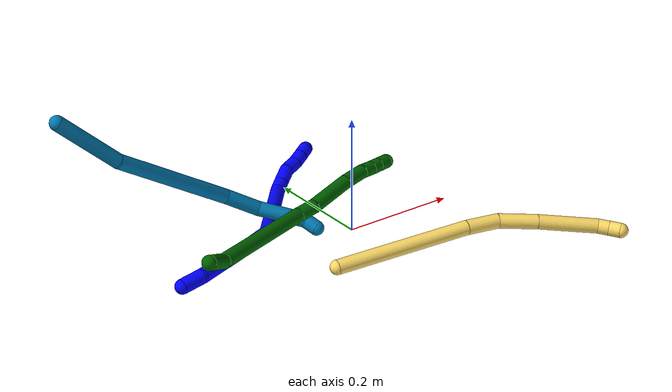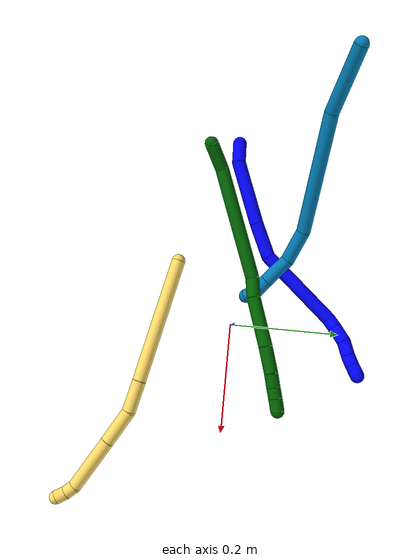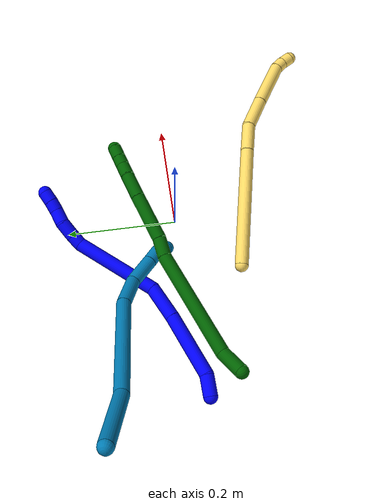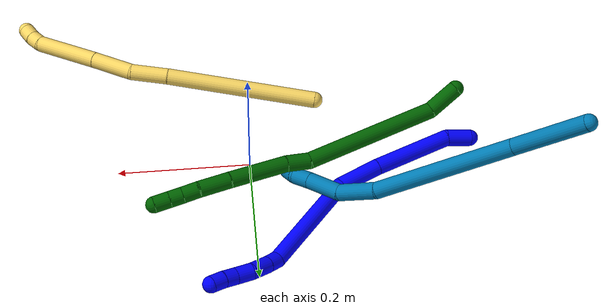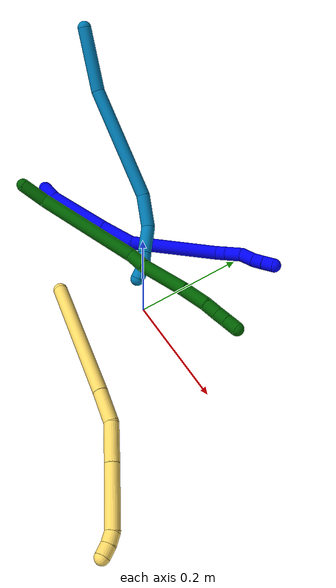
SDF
<sdf version="1.7">
 <world name="default">
  <model name="1">
   <static>0</static>
   <link name="1">
    <collision name="collision-cylinder-e_1_1_4">
     <pose>0.008396 -0.002607 -0.016357 2.98357 0.469124 2.50169</pose>
     <geometry><cylinder><radius>0.0125</radius><length>0.03714</length></cylinder></geometry>
     <surface>
      <friction><ode><mu>1.16</mu><mu2>1.16</mu2><slip1>0</slip1><slip2>0</slip2></ode></friction>
      <contact><ode><kp>1e+06</kp><kd>1</kd><max_vel>0</max_vel><min_depth>0.001</min_depth></ode></contact>
     </surface>
    </collision>
    <visual name="visual-cylinder-e_1_1_4">
     <pose>0.008396 -0.002607 -0.016357 2.98357 0.469124 2.50169</pose>
     <geometry><cylinder><radius>0.0125</radius><length>0.03714</length></cylinder></geometry>
     <material><ambient>0 0 1 1</ambient></material>
    </visual>
    <collision name="collision-cylinder-e_2_4_5">
     <pose>0.051893 0.00668 -0.079528 -2.89281 0.628444 -2.40702</pose>
     <geometry><cylinder><radius>0.0125</radius><length>0.119416</length></cylinder></geometry>
     <surface>
      <friction><ode><mu>1.16</mu><mu2>1.16</mu2><slip1>0</slip1><slip2>0</slip2></ode></friction>
      <contact><ode><kp>1e+06</kp><kd>1</kd><max_vel>0</max_vel><min_depth>0.001</min_depth></ode></contact>
     </surface>
    </collision>
    <visual name="visual-cylinder-e_2_4_5">
     <pose>0.051893 0.00668 -0.079528 -2.89281 0.628444 -2.40702</pose>
     <geometry><cylinder><radius>0.0125</radius><length>0.119416</length></cylinder></geometry>
     <material><ambient>0 0 1 1</ambient></material>
    </visual>
    <collision name="collision-cylinder-e_3_5_6">
     <pose>0.106765 0.026785 -0.150716 -2.8166 0.655348 -2.24285</pose>
     <geometry><cylinder><radius>0.0125</radius><length>0.064882</length></cylinder></geometry>
     <surface>
      <friction><ode><mu>1.16</mu><mu2>1.16</mu2><slip1>0</slip1><slip2>0</slip2></ode></friction>
      <contact><ode><kp>1e+06</kp><kd>1</kd><max_vel>0</max_vel><min_depth>0.001</min_depth></ode></contact>
     </surface>
    </collision>
    <visual name="visual-cylinder-e_3_5_6">
     <pose>0.106765 0.026785 -0.150716 -2.8166 0.655348 -2.24285</pose>
     <geometry><cylinder><radius>0.0125</radius><length>0.064882</length></cylinder></geometry>
     <material><ambient>0 0 1 1</ambient></material>
    </visual>
    <collision name="collision-cylinder-e_4_6_7">
     <pose>0.190973 0.069179 -0.208637 -2.34682 0.931625 -1.75026</pose>
     <geometry><cylinder><radius>0.0125</radius><length>0.160573</length></cylinder></geometry>
     <surface>
      <friction><ode><mu>1.16</mu><mu2>1.16</mu2><slip1>0</slip1><slip2>0</slip2></ode></friction>
      <contact><ode><kp>1e+06</kp><kd>1</kd><max_vel>0</max_vel><min_depth>0.001</min_depth></ode></contact>
     </surface>
    </collision>
    <visual name="visual-cylinder-e_4_6_7">
     <pose>0.190973 0.069179 -0.208637 -2.34682 0.931625 -1.75026</pose>
     <geometry><cylinder><radius>0.0125</radius><length>0.160573</length></cylinder></geometry>
     <material><ambient>0 0 1 1</ambient></material>
    </visual>
    <collision name="collision-cylinder-e_5_7_8">
     <pose>0.264336 0.103965 -0.24705 -3.01818 1.06835 -2.93346</pose>
     <geometry><cylinder><radius>0.0125</radius><length>0.020368</length></cylinder></geometry>
     <surface>
      <friction><ode><mu>1.16</mu><mu2>1.16</mu2><slip1>0</slip1><slip2>0</slip2></ode></friction>
      <contact><ode><kp>1e+06</kp><kd>1</kd><max_vel>0</max_vel><min_depth>0.001</min_depth></ode></contact>
     </surface>
    </collision>
    <visual name="visual-cylinder-e_5_7_8">
     <pose>0.264336 0.103965 -0.24705 -3.01818 1.06835 -2.93346</pose>
     <geometry><cylinder><radius>0.0125</radius><length>0.020368</length></cylinder></geometry>
     <material><ambient>0 0 1 1</ambient></material>
    </visual>
    <collision name="collision-cylinder-e_6_8_9">
     <pose>0.286703 0.104455 -0.259505 3.12671 1.05687 3.1161</pose>
     <geometry><cylinder><radius>0.0125</radius><length>0.030873</length></cylinder></geometry>
     <surface>
      <friction><ode><mu>1.16</mu><mu2>1.16</mu2><slip1>0</slip1><slip2>0</slip2></ode></friction>
      <contact><ode><kp>1e+06</kp><kd>1</kd><max_vel>0</max_vel><min_depth>0.001</min_depth></ode></contact>
     </surface>
    </collision>
    <visual name="visual-cylinder-e_6_8_9">
     <pose>0.286703 0.104455 -0.259505 3.12671 1.05687 3.1161</pose>
     <geometry><cylinder><radius>0.0125</radius><length>0.030873</length></cylinder></geometry>
     <material><ambient>0 0 1 1</ambient></material>
    </visual>
    <collision name="collision-cylinder-e_7_9_10">
     <pose>0.308739 0.104745 -0.276718 -3.09976 0.728366 -3.03195</pose>
     <geometry><cylinder><radius>0.0125</radius><length>0.025819</length></cylinder></geometry>
     <surface>
      <friction><ode><mu>1.16</mu><mu2>1.16</mu2><slip1>0</slip1><slip2>0</slip2></ode></friction>
      <contact><ode><kp>1e+06</kp><kd>1</kd><max_vel>0</max_vel><min_depth>0.001</min_depth></ode></contact>
     </surface>
    </collision>
    <visual name="visual-cylinder-e_7_9_10">
     <pose>0.308739 0.104745 -0.276718 -3.09976 0.728366 -3.03195</pose>
     <geometry><cylinder><radius>0.0125</radius><length>0.025819</length></cylinder></geometry>
     <material><ambient>0 0 1 1</ambient></material>
    </visual>
    <collision name="collision-cylinder-e_8_10_11">
     <pose>0.325206 0.104665 -0.292791 3.06672 0.883306 2.9835</pose>
     <geometry><cylinder><radius>0.0125</radius><length>0.020376</length></cylinder></geometry>
     <surface>
      <friction><ode><mu>1.16</mu><mu2>1.16</mu2><slip1>0</slip1><slip2>0</slip2></ode></friction>
      <contact><ode><kp>1e+06</kp><kd>1</kd><max_vel>0</max_vel><min_depth>0.001</min_depth></ode></contact>
     </surface>
    </collision>
    <visual name="visual-cylinder-e_8_10_11">
     <pose>0.325206 0.104665 -0.292791 3.06672 0.883306 2.9835</pose>
     <geometry><cylinder><radius>0.0125</radius><length>0.020376</length></cylinder></geometry>
     <material><ambient>0 0 1 1</ambient></material>
    </visual>
    <collision name="collision-cylinder-e_9_11_2">
     <pose>0.341149 0.104598 -0.305588 -3.07596 0.903042 -3.0064</pose>
     <geometry><cylinder><radius>0.0125</radius><length>0.020552</length></cylinder></geometry>
     <surface>
      <friction><ode><mu>1.16</mu><mu2>1.16</mu2><slip1>0</slip1><slip2>0</slip2></ode></friction>
      <contact><ode><kp>1e+06</kp><kd>1</kd><max_vel>0</max_vel><min_depth>0.001</min_depth></ode></contact>
     </surface>
    </collision>
    <visual name="visual-cylinder-e_9_11_2">
     <pose>0.341149 0.104598 -0.305588 -3.07596 0.903042 -3.0064</pose>
     <geometry><cylinder><radius>0.0125</radius><length>0.020552</length></cylinder></geometry>
     <material><ambient>0 0 1 1</ambient></material>
    </visual>
    <collision name="collision-sphere-2">
     <pose>0.349218 0.105016 -0.311937 0 -0 0</pose>
     <geometry><sphere><radius>0.0125</radius></sphere></geometry>
     <surface>
      <friction><ode><mu>1.16</mu><mu2>1.16</mu2><slip1>0</slip1><slip2>0</slip2></ode></friction>
      <contact><ode><kp>1e+06</kp><kd>1</kd><max_vel>0</max_vel><min_depth>0.001</min_depth></ode></contact>
     </surface>
    </collision>
    <visual name="visual-sphere-2">
     <pose>0.349218 0.105016 -0.311937 0 -0 0</pose>
     <geometry><sphere><radius>0.0125</radius></sphere></geometry>
     <material><ambient>0 0 1 1</ambient></material>
    </visual>
    <collision name="collision-sphere-11">
     <pose>0.33308 0.104181 -0.299238 0 -0 0</pose>
     <geometry><sphere><radius>0.0125</radius></sphere></geometry>
     <surface>
      <friction><ode><mu>1.16</mu><mu2>1.16</mu2><slip1>0</slip1><slip2>0</slip2></ode></friction>
      <contact><ode><kp>1e+06</kp><kd>1</kd><max_vel>0</max_vel><min_depth>0.001</min_depth></ode></contact>
     </surface>
    </collision>
    <visual name="visual-sphere-11">
     <pose>0.33308 0.104181 -0.299238 0 -0 0</pose>
     <geometry><sphere><radius>0.0125</radius></sphere></geometry>
     <material><ambient>0 0 1 1</ambient></material>
    </visual>
    <collision name="collision-sphere-10">
     <pose>0.317333 0.105148 -0.286344 0 -0 0</pose>
     <geometry><sphere><radius>0.0125</radius></sphere></geometry>
     <surface>
      <friction><ode><mu>1.16</mu><mu2>1.16</mu2><slip1>0</slip1><slip2>0</slip2></ode></friction>
      <contact><ode><kp>1e+06</kp><kd>1</kd><max_vel>0</max_vel><min_depth>0.001</min_depth></ode></contact>
     </surface>
    </collision>
    <visual name="visual-sphere-10">
     <pose>0.317333 0.105148 -0.286344 0 -0 0</pose>
     <geometry><sphere><radius>0.0125</radius></sphere></geometry>
     <material><ambient>0 0 1 1</ambient></material>
    </visual>
    <collision name="collision-sphere-9">
     <pose>0.300146 0.104342 -0.267093 0 -0 0</pose>
     <geometry><sphere><radius>0.0125</radius></sphere></geometry>
     <surface>
      <friction><ode><mu>1.16</mu><mu2>1.16</mu2><slip1>0</slip1><slip2>0</slip2></ode></friction>
      <contact><ode><kp>1e+06</kp><kd>1</kd><max_vel>0</max_vel><min_depth>0.001</min_depth></ode></contact>
     </surface>
    </collision>
    <visual name="visual-sphere-9">
     <pose>0.300146 0.104342 -0.267093 0 -0 0</pose>
     <geometry><sphere><radius>0.0125</radius></sphere></geometry>
     <material><ambient>0 0 1 1</ambient></material>
    </visual>
    <collision name="collision-sphere-4">
     <pose>0.016791 -0.005213 -0.032715 0 -0 0</pose>
     <geometry><sphere><radius>0.0125</radius></sphere></geometry>
     <surface>
      <friction><ode><mu>1.16</mu><mu2>1.16</mu2><slip1>0</slip1><slip2>0</slip2></ode></friction>
      <contact><ode><kp>1e+06</kp><kd>1</kd><max_vel>0</max_vel><min_depth>0.001</min_depth></ode></contact>
     </surface>
    </collision>
    <visual name="visual-sphere-4">
     <pose>0.016791 -0.005213 -0.032715 0 -0 0</pose>
     <geometry><sphere><radius>0.0125</radius></sphere></geometry>
     <material><ambient>0 0 1 1</ambient></material>
    </visual>
    <collision name="collision-sphere-1">
     <geometry><sphere><radius>0.0125</radius></sphere></geometry>
     <surface>
      <friction><ode><mu>1.16</mu><mu2>1.16</mu2><slip1>0</slip1><slip2>0</slip2></ode></friction>
      <contact><ode><kp>1e+06</kp><kd>1</kd><max_vel>0</max_vel><min_depth>0.001</min_depth></ode></contact>
     </surface>
    </collision>
    <visual name="visual-sphere-1">
     <geometry><sphere><radius>0.0125</radius></sphere></geometry>
     <material><ambient>0 0 1 1</ambient></material>
    </visual>
    <collision name="collision-sphere-8">
     <pose>0.273261 0.104568 -0.251917 0 -0 0</pose>
     <geometry><sphere><radius>0.0125</radius></sphere></geometry>
     <surface>
      <friction><ode><mu>1.16</mu><mu2>1.16</mu2><slip1>0</slip1><slip2>0</slip2></ode></friction>
      <contact><ode><kp>1e+06</kp><kd>1</kd><max_vel>0</max_vel><min_depth>0.001</min_depth></ode></contact>
     </surface>
    </collision>
    <visual name="visual-sphere-8">
     <pose>0.273261 0.104568 -0.251917 0 -0 0</pose>
     <geometry><sphere><radius>0.0125</radius></sphere></geometry>
     <material><ambient>0 0 1 1</ambient></material>
    </visual>
    <collision name="collision-sphere-5">
     <pose>0.086995 0.018572 -0.126342 0 -0 0</pose>
     <geometry><sphere><radius>0.0125</radius></sphere></geometry>
     <surface>
      <friction><ode><mu>1.16</mu><mu2>1.16</mu2><slip1>0</slip1><slip2>0</slip2></ode></friction>
      <contact><ode><kp>1e+06</kp><kd>1</kd><max_vel>0</max_vel><min_depth>0.001</min_depth></ode></contact>
     </surface>
    </collision>
    <visual name="visual-sphere-5">
     <pose>0.086995 0.018572 -0.126342 0 -0 0</pose>
     <geometry><sphere><radius>0.0125</radius></sphere></geometry>
     <material><ambient>0 0 1 1</ambient></material>
    </visual>
    <collision name="collision-sphere-6">
     <pose>0.126536 0.034998 -0.17509 0 -0 0</pose>
     <geometry><sphere><radius>0.0125</radius></sphere></geometry>
     <surface>
      <friction><ode><mu>1.16</mu><mu2>1.16</mu2><slip1>0</slip1><slip2>0</slip2></ode></friction>
      <contact><ode><kp>1e+06</kp><kd>1</kd><max_vel>0</max_vel><min_depth>0.001</min_depth></ode></contact>
     </surface>
    </collision>
    <visual name="visual-sphere-6">
     <pose>0.126536 0.034998 -0.17509 0 -0 0</pose>
     <geometry><sphere><radius>0.0125</radius></sphere></geometry>
     <material><ambient>0 0 1 1</ambient></material>
    </visual>
    <collision name="collision-sphere-7">
     <pose>0.25541 0.103361 -0.242183 0 -0 0</pose>
     <geometry><sphere><radius>0.0125</radius></sphere></geometry>
     <surface>
      <friction><ode><mu>1.16</mu><mu2>1.16</mu2><slip1>0</slip1><slip2>0</slip2></ode></friction>
      <contact><ode><kp>1e+06</kp><kd>1</kd><max_vel>0</max_vel><min_depth>0.001</min_depth></ode></contact>
     </surface>
    </collision>
    <visual name="visual-sphere-7">
     <pose>0.25541 0.103361 -0.242183 0 -0 0</pose>
     <geometry><sphere><radius>0.0125</radius></sphere></geometry>
     <material><ambient>0 0 1 1</ambient></material>
    </visual>
    <inertial>
     <pose>0.159891 0.051753 -0.171639 0 -0 0</pose>
     <mass>0.5</mass>
     <inertia>
      <ixx>-0.000419</ixx>
      <ixy>0</ixy>
      <ixz>0</ixz>
      <iyy>0.000105</iyy>
      <iyz>0</iyz>
      <izz>-0.000603</izz>
     </inertia>
    </inertial>
   </link>
   <pose>-0.339502 -0.014087 0.012146 -1.2779 -0.582114 1.13801</pose>
  </model>
  <model name="5">
   <static>0</static>
   <link name="5">
    <collision name="collision-cylinder-e_1_1_4">
     <pose>0.112079 0.000285 -0.030842 -3.13237 1.30225 -3.12949</pose>
     <geometry><cylinder><radius>0.0125</radius><length>0.23249</length></cylinder></geometry>
     <surface>
      <friction><ode><mu>1.16</mu><mu2>1.16</mu2><slip1>0</slip1><slip2>0</slip2></ode></friction>
      <contact><ode><kp>1e+06</kp><kd>1</kd><max_vel>0</max_vel><min_depth>0.001</min_depth></ode></contact>
     </surface>
    </collision>
    <visual name="visual-cylinder-e_1_1_4">
     <pose>0.112079 0.000285 -0.030842 -3.13237 1.30225 -3.12949</pose>
     <geometry><cylinder><radius>0.0125</radius><length>0.23249</length></cylinder></geometry>
     <material><ambient>1 0.858824 0.4 1</ambient></material>
    </visual>
    <collision name="collision-cylinder-e_2_4_5">
     <pose>0.251601 0.002656 -0.070521 -2.90963 1.25132 -2.82184</pose>
     <geometry><cylinder><radius>0.0125</radius><length>0.057814</length></cylinder></geometry>
     <surface>
      <friction><ode><mu>1.16</mu><mu2>1.16</mu2><slip1>0</slip1><slip2>0</slip2></ode></friction>
      <contact><ode><kp>1e+06</kp><kd>1</kd><max_vel>0</max_vel><min_depth>0.001</min_depth></ode></contact>
     </surface>
    </collision>
    <visual name="visual-cylinder-e_2_4_5">
     <pose>0.251601 0.002656 -0.070521 -2.90963 1.25132 -2.82184</pose>
     <geometry><cylinder><radius>0.0125</radius><length>0.057814</length></cylinder></geometry>
     <material><ambient>1 0.858824 0.4 1</ambient></material>
    </visual>
    <collision name="collision-cylinder-e_3_5_6">
     <pose>0.306134 0.006552 -0.098821 -3.04893 0.945692 -2.96082</pose>
     <geometry><cylinder><radius>0.0125</radius><length>0.066812</length></cylinder></geometry>
     <surface>
      <friction><ode><mu>1.16</mu><mu2>1.16</mu2><slip1>0</slip1><slip2>0</slip2></ode></friction>
      <contact><ode><kp>1e+06</kp><kd>1</kd><max_vel>0</max_vel><min_depth>0.001</min_depth></ode></contact>
     </surface>
    </collision>
    <visual name="visual-cylinder-e_3_5_6">
     <pose>0.306134 0.006552 -0.098821 -3.04893 0.945692 -2.96082</pose>
     <geometry><cylinder><radius>0.0125</radius><length>0.066812</length></cylinder></geometry>
     <material><ambient>1 0.858824 0.4 1</ambient></material>
    </visual>
    <collision name="collision-cylinder-e_4_6_7">
     <pose>0.373947 0.013274 -0.149294 -2.98447 0.914033 -2.8241</pose>
     <geometry><cylinder><radius>0.0125</radius><length>0.102842</length></cylinder></geometry>
     <surface>
      <friction><ode><mu>1.16</mu><mu2>1.16</mu2><slip1>0</slip1><slip2>0</slip2></ode></friction>
      <contact><ode><kp>1e+06</kp><kd>1</kd><max_vel>0</max_vel><min_depth>0.001</min_depth></ode></contact>
     </surface>
    </collision>
    <visual name="visual-cylinder-e_4_6_7">
     <pose>0.373947 0.013274 -0.149294 -2.98447 0.914033 -2.8241</pose>
     <geometry><cylinder><radius>0.0125</radius><length>0.102842</length></cylinder></geometry>
     <material><ambient>1 0.858824 0.4 1</ambient></material>
    </visual>
    <collision name="collision-cylinder-e_5_7_8">
     <pose>0.420632 0.017815 -0.18835 3.09553 0.637075 3.00212</pose>
     <geometry><cylinder><radius>0.0125</radius><length>0.020042</length></cylinder></geometry>
     <surface>
      <friction><ode><mu>1.16</mu><mu2>1.16</mu2><slip1>0</slip1><slip2>0</slip2></ode></friction>
      <contact><ode><kp>1e+06</kp><kd>1</kd><max_vel>0</max_vel><min_depth>0.001</min_depth></ode></contact>
     </surface>
    </collision>
    <visual name="visual-cylinder-e_5_7_8">
     <pose>0.420632 0.017815 -0.18835 3.09553 0.637075 3.00212</pose>
     <geometry><cylinder><radius>0.0125</radius><length>0.020042</length></cylinder></geometry>
     <material><ambient>1 0.858824 0.4 1</ambient></material>
    </visual>
    <collision name="collision-cylinder-e_6_8_2">
     <pose>0.431296 0.015868 -0.20508 2.962 0.489644 2.44977</pose>
     <geometry><cylinder><radius>0.0125</radius><length>0.02</length></cylinder></geometry>
     <surface>
      <friction><ode><mu>1.16</mu><mu2>1.16</mu2><slip1>0</slip1><slip2>0</slip2></ode></friction>
      <contact><ode><kp>1e+06</kp><kd>1</kd><max_vel>0</max_vel><min_depth>0.001</min_depth></ode></contact>
     </surface>
    </collision>
    <visual name="visual-cylinder-e_6_8_2">
     <pose>0.431296 0.015868 -0.20508 2.962 0.489644 2.44977</pose>
     <geometry><cylinder><radius>0.0125</radius><length>0.02</length></cylinder></geometry>
     <material><ambient>1 0.858824 0.4 1</ambient></material>
    </visual>
    <collision name="collision-sphere-2">
     <pose>0.435999 0.014292 -0.213763 0 -0 0</pose>
     <geometry><sphere><radius>0.0125</radius></sphere></geometry>
     <surface>
      <friction><ode><mu>1.16</mu><mu2>1.16</mu2><slip1>0</slip1><slip2>0</slip2></ode></friction>
      <contact><ode><kp>1e+06</kp><kd>1</kd><max_vel>0</max_vel><min_depth>0.001</min_depth></ode></contact>
     </surface>
    </collision>
    <visual name="visual-sphere-2">
     <pose>0.435999 0.014292 -0.213763 0 -0 0</pose>
     <geometry><sphere><radius>0.0125</radius></sphere></geometry>
     <material><ambient>1 0.858824 0.4 1</ambient></material>
    </visual>
    <collision name="collision-sphere-4">
     <pose>0.224157 0.000569 -0.061685 0 -0 0</pose>
     <geometry><sphere><radius>0.0125</radius></sphere></geometry>
     <surface>
      <friction><ode><mu>1.16</mu><mu2>1.16</mu2><slip1>0</slip1><slip2>0</slip2></ode></friction>
      <contact><ode><kp>1e+06</kp><kd>1</kd><max_vel>0</max_vel><min_depth>0.001</min_depth></ode></contact>
     </surface>
    </collision>
    <visual name="visual-sphere-4">
     <pose>0.224157 0.000569 -0.061685 0 -0 0</pose>
     <geometry><sphere><radius>0.0125</radius></sphere></geometry>
     <material><ambient>1 0.858824 0.4 1</ambient></material>
    </visual>
    <collision name="collision-sphere-1">
     <geometry><sphere><radius>0.0125</radius></sphere></geometry>
     <surface>
      <friction><ode><mu>1.16</mu><mu2>1.16</mu2><slip1>0</slip1><slip2>0</slip2></ode></friction>
      <contact><ode><kp>1e+06</kp><kd>1</kd><max_vel>0</max_vel><min_depth>0.001</min_depth></ode></contact>
     </surface>
    </collision>
    <visual name="visual-sphere-1">
     <geometry><sphere><radius>0.0125</radius></sphere></geometry>
     <material><ambient>1 0.858824 0.4 1</ambient></material>
    </visual>
    <collision name="collision-sphere-8">
     <pose>0.426593 0.017444 -0.196397 0 -0 0</pose>
     <geometry><sphere><radius>0.0125</radius></sphere></geometry>
     <surface>
      <friction><ode><mu>1.16</mu><mu2>1.16</mu2><slip1>0</slip1><slip2>0</slip2></ode></friction>
      <contact><ode><kp>1e+06</kp><kd>1</kd><max_vel>0</max_vel><min_depth>0.001</min_depth></ode></contact>
     </surface>
    </collision>
    <visual name="visual-sphere-8">
     <pose>0.426593 0.017444 -0.196397 0 -0 0</pose>
     <geometry><sphere><radius>0.0125</radius></sphere></geometry>
     <material><ambient>1 0.858824 0.4 1</ambient></material>
    </visual>
    <collision name="collision-sphere-5">
     <pose>0.279045 0.004743 -0.079356 0 -0 0</pose>
     <geometry><sphere><radius>0.0125</radius></sphere></geometry>
     <surface>
      <friction><ode><mu>1.16</mu><mu2>1.16</mu2><slip1>0</slip1><slip2>0</slip2></ode></friction>
      <contact><ode><kp>1e+06</kp><kd>1</kd><max_vel>0</max_vel><min_depth>0.001</min_depth></ode></contact>
     </surface>
    </collision>
    <visual name="visual-sphere-5">
     <pose>0.279045 0.004743 -0.079356 0 -0 0</pose>
     <geometry><sphere><radius>0.0125</radius></sphere></geometry>
     <material><ambient>1 0.858824 0.4 1</ambient></material>
    </visual>
    <collision name="collision-sphere-6">
     <pose>0.333223 0.008361 -0.118286 0 -0 0</pose>
     <geometry><sphere><radius>0.0125</radius></sphere></geometry>
     <surface>
      <friction><ode><mu>1.16</mu><mu2>1.16</mu2><slip1>0</slip1><slip2>0</slip2></ode></friction>
      <contact><ode><kp>1e+06</kp><kd>1</kd><max_vel>0</max_vel><min_depth>0.001</min_depth></ode></contact>
     </surface>
    </collision>
    <visual name="visual-sphere-6">
     <pose>0.333223 0.008361 -0.118286 0 -0 0</pose>
     <geometry><sphere><radius>0.0125</radius></sphere></geometry>
     <material><ambient>1 0.858824 0.4 1</ambient></material>
    </visual>
    <collision name="collision-sphere-7">
     <pose>0.414671 0.018186 -0.180303 0 -0 0</pose>
     <geometry><sphere><radius>0.0125</radius></sphere></geometry>
     <surface>
      <friction><ode><mu>1.16</mu><mu2>1.16</mu2><slip1>0</slip1><slip2>0</slip2></ode></friction>
      <contact><ode><kp>1e+06</kp><kd>1</kd><max_vel>0</max_vel><min_depth>0.001</min_depth></ode></contact>
     </surface>
    </collision>
    <visual name="visual-sphere-7">
     <pose>0.414671 0.018186 -0.180303 0 -0 0</pose>
     <geometry><sphere><radius>0.0125</radius></sphere></geometry>
     <material><ambient>1 0.858824 0.4 1</ambient></material>
    </visual>
    <inertial>
     <pose>0.233141 0.005394 -0.082161 0 -0 0</pose>
     <mass>0.5</mass>
     <inertia>
      <ixx>-0.00035</ixx>
      <ixy>0</ixy>
      <ixz>0</ixz>
      <iyy>0.001173</iyy>
      <iyz>0</iyz>
      <izz>-0.001166</izz>
     </inertia>
    </inertial>
   </link>
   <pose>-0.10923 -0.107559 0.011934 -1.25941 -0.180648 0.042478</pose>
  </model>
  <model name="6">
   <static>0</static>
   <link name="6">
    <collision name="collision-cylinder-e_1_1_4">
     <pose>0.0241 0.007156 0.002798 -1.19805 1.26214 -0.925524</pose>
     <geometry><cylinder><radius>0.0125</radius><length>0.05059</length></cylinder></geometry>
     <surface>
      <friction><ode><mu>1.16</mu><mu2>1.16</mu2><slip1>0</slip1><slip2>0</slip2></ode></friction>
      <contact><ode><kp>1e+06</kp><kd>1</kd><max_vel>0</max_vel><min_depth>0.001</min_depth></ode></contact>
     </surface>
    </collision>
    <visual name="visual-cylinder-e_1_1_4">
     <pose>0.0241 0.007156 0.002798 -1.19805 1.26214 -0.925524</pose>
     <geometry><cylinder><radius>0.0125</radius><length>0.05059</length></cylinder></geometry>
     <material><ambient>0 0.392157 0.003922 1</ambient></material>
    </visual>
    <collision name="collision-cylinder-e_2_4_5">
     <pose>0.139853 0.022752 0.051272 -0.182702 1.10174 -0.112429</pose>
     <geometry><cylinder><radius>0.0125</radius><length>0.205503</length></cylinder></geometry>
     <surface>
      <friction><ode><mu>1.16</mu><mu2>1.16</mu2><slip1>0</slip1><slip2>0</slip2></ode></friction>
      <contact><ode><kp>1e+06</kp><kd>1</kd><max_vel>0</max_vel><min_depth>0.001</min_depth></ode></contact>
     </surface>
    </collision>
    <visual name="visual-cylinder-e_2_4_5">
     <pose>0.139853 0.022752 0.051272 -0.182702 1.10174 -0.112429</pose>
     <geometry><cylinder><radius>0.0125</radius><length>0.205503</length></cylinder></geometry>
     <material><ambient>0 0.392157 0.003922 1</ambient></material>
    </visual>
    <collision name="collision-cylinder-e_3_5_6">
     <pose>0.246527 0.028349 0.106234 0.296954 0.996801 0.162451</pose>
     <geometry><cylinder><radius>0.0125</radius><length>0.035775</length></cylinder></geometry>
     <surface>
      <friction><ode><mu>1.16</mu><mu2>1.16</mu2><slip1>0</slip1><slip2>0</slip2></ode></friction>
      <contact><ode><kp>1e+06</kp><kd>1</kd><max_vel>0</max_vel><min_depth>0.001</min_depth></ode></contact>
     </surface>
    </collision>
    <visual name="visual-cylinder-e_3_5_6">
     <pose>0.246527 0.028349 0.106234 0.296954 0.996801 0.162451</pose>
     <geometry><cylinder><radius>0.0125</radius><length>0.035775</length></cylinder></geometry>
     <material><ambient>0 0.392157 0.003922 1</ambient></material>
    </visual>
    <collision name="collision-cylinder-e_4_6_7">
     <pose>0.299352 0.026126 0.140718 -0.024591 0.982775 -0.013161</pose>
     <geometry><cylinder><radius>0.0125</radius><length>0.090871</length></cylinder></geometry>
     <surface>
      <friction><ode><mu>1.16</mu><mu2>1.16</mu2><slip1>0</slip1><slip2>0</slip2></ode></friction>
      <contact><ode><kp>1e+06</kp><kd>1</kd><max_vel>0</max_vel><min_depth>0.001</min_depth></ode></contact>
     </surface>
    </collision>
    <visual name="visual-cylinder-e_4_6_7">
     <pose>0.299352 0.026126 0.140718 -0.024591 0.982775 -0.013161</pose>
     <geometry><cylinder><radius>0.0125</radius><length>0.090871</length></cylinder></geometry>
     <material><ambient>0 0.392157 0.003922 1</ambient></material>
    </visual>
    <collision name="collision-cylinder-e_5_7_8">
     <pose>0.358012 0.026733 0.177787 0.00111 1.05324 0.000645</pose>
     <geometry><cylinder><radius>0.0125</radius><length>0.047996</length></cylinder></geometry>
     <surface>
      <friction><ode><mu>1.16</mu><mu2>1.16</mu2><slip1>0</slip1><slip2>0</slip2></ode></friction>
      <contact><ode><kp>1e+06</kp><kd>1</kd><max_vel>0</max_vel><min_depth>0.001</min_depth></ode></contact>
     </surface>
    </collision>
    <visual name="visual-cylinder-e_5_7_8">
     <pose>0.358012 0.026733 0.177787 0.00111 1.05324 0.000645</pose>
     <geometry><cylinder><radius>0.0125</radius><length>0.047996</length></cylinder></geometry>
     <material><ambient>0 0.392157 0.003922 1</ambient></material>
    </visual>
    <collision name="collision-cylinder-e_6_8_9">
     <pose>0.390584 0.026584 0.194286 0.029368 1.19469 0.019978</pose>
     <geometry><cylinder><radius>0.0125</radius><length>0.025195</length></cylinder></geometry>
     <surface>
      <friction><ode><mu>1.16</mu><mu2>1.16</mu2><slip1>0</slip1><slip2>0</slip2></ode></friction>
      <contact><ode><kp>1e+06</kp><kd>1</kd><max_vel>0</max_vel><min_depth>0.001</min_depth></ode></contact>
     </surface>
    </collision>
    <visual name="visual-cylinder-e_6_8_9">
     <pose>0.390584 0.026584 0.194286 0.029368 1.19469 0.019978</pose>
     <geometry><cylinder><radius>0.0125</radius><length>0.025195</length></cylinder></geometry>
     <material><ambient>0 0.392157 0.003922 1</ambient></material>
    </visual>
    <collision name="collision-cylinder-e_7_9_10">
     <pose>0.411496 0.02635 0.202994 0.023911 1.15279 0.015543</pose>
     <geometry><cylinder><radius>0.0125</radius><length>0.020123</length></cylinder></geometry>
     <surface>
      <friction><ode><mu>1.16</mu><mu2>1.16</mu2><slip1>0</slip1><slip2>0</slip2></ode></friction>
      <contact><ode><kp>1e+06</kp><kd>1</kd><max_vel>0</max_vel><min_depth>0.001</min_depth></ode></contact>
     </surface>
    </collision>
    <visual name="visual-cylinder-e_7_9_10">
     <pose>0.411496 0.02635 0.202994 0.023911 1.15279 0.015543</pose>
     <geometry><cylinder><radius>0.0125</radius><length>0.020123</length></cylinder></geometry>
     <material><ambient>0 0.392157 0.003922 1</ambient></material>
    </visual>
    <collision name="collision-cylinder-e_8_10_2">
     <pose>0.431653 0.026073 0.21189 0.037338 1.15683 0.02438</pose>
     <geometry><cylinder><radius>0.0125</radius><length>0.023948</length></cylinder></geometry>
     <surface>
      <friction><ode><mu>1.16</mu><mu2>1.16</mu2><slip1>0</slip1><slip2>0</slip2></ode></friction>
      <contact><ode><kp>1e+06</kp><kd>1</kd><max_vel>0</max_vel><min_depth>0.001</min_depth></ode></contact>
     </surface>
    </collision>
    <visual name="visual-cylinder-e_8_10_2">
     <pose>0.431653 0.026073 0.21189 0.037338 1.15683 0.02438</pose>
     <geometry><cylinder><radius>0.0125</radius><length>0.023948</length></cylinder></geometry>
     <material><ambient>0 0.392157 0.003922 1</ambient></material>
    </visual>
    <collision name="collision-sphere-2">
     <pose>0.442616 0.025893 0.216703 0 -0 0</pose>
     <geometry><sphere><radius>0.0125</radius></sphere></geometry>
     <surface>
      <friction><ode><mu>1.16</mu><mu2>1.16</mu2><slip1>0</slip1><slip2>0</slip2></ode></friction>
      <contact><ode><kp>1e+06</kp><kd>1</kd><max_vel>0</max_vel><min_depth>0.001</min_depth></ode></contact>
     </surface>
    </collision>
    <visual name="visual-sphere-2">
     <pose>0.442616 0.025893 0.216703 0 -0 0</pose>
     <geometry><sphere><radius>0.0125</radius></sphere></geometry>
     <material><ambient>0 0.392157 0.003922 1</ambient></material>
    </visual>
    <collision name="collision-sphere-10">
     <pose>0.420691 0.026253 0.207077 0 -0 0</pose>
     <geometry><sphere><radius>0.0125</radius></sphere></geometry>
     <surface>
      <friction><ode><mu>1.16</mu><mu2>1.16</mu2><slip1>0</slip1><slip2>0</slip2></ode></friction>
      <contact><ode><kp>1e+06</kp><kd>1</kd><max_vel>0</max_vel><min_depth>0.001</min_depth></ode></contact>
     </surface>
    </collision>
    <visual name="visual-sphere-10">
     <pose>0.420691 0.026253 0.207077 0 -0 0</pose>
     <geometry><sphere><radius>0.0125</radius></sphere></geometry>
     <material><ambient>0 0.392157 0.003922 1</ambient></material>
    </visual>
    <collision name="collision-sphere-9">
     <pose>0.4023 0.026448 0.198911 0 -0 0</pose>
     <geometry><sphere><radius>0.0125</radius></sphere></geometry>
     <surface>
      <friction><ode><mu>1.16</mu><mu2>1.16</mu2><slip1>0</slip1><slip2>0</slip2></ode></friction>
      <contact><ode><kp>1e+06</kp><kd>1</kd><max_vel>0</max_vel><min_depth>0.001</min_depth></ode></contact>
     </surface>
    </collision>
    <visual name="visual-sphere-9">
     <pose>0.4023 0.026448 0.198911 0 -0 0</pose>
     <geometry><sphere><radius>0.0125</radius></sphere></geometry>
     <material><ambient>0 0.392157 0.003922 1</ambient></material>
    </visual>
    <collision name="collision-sphere-4">
     <pose>0.048199 0.014313 0.005597 0 -0 0</pose>
     <geometry><sphere><radius>0.0125</radius></sphere></geometry>
     <surface>
      <friction><ode><mu>1.16</mu><mu2>1.16</mu2><slip1>0</slip1><slip2>0</slip2></ode></friction>
      <contact><ode><kp>1e+06</kp><kd>1</kd><max_vel>0</max_vel><min_depth>0.001</min_depth></ode></contact>
     </surface>
    </collision>
    <visual name="visual-sphere-4">
     <pose>0.048199 0.014313 0.005597 0 -0 0</pose>
     <geometry><sphere><radius>0.0125</radius></sphere></geometry>
     <material><ambient>0 0.392157 0.003922 1</ambient></material>
    </visual>
    <collision name="collision-sphere-1">
     <geometry><sphere><radius>0.0125</radius></sphere></geometry>
     <surface>
      <friction><ode><mu>1.16</mu><mu2>1.16</mu2><slip1>0</slip1><slip2>0</slip2></ode></friction>
      <contact><ode><kp>1e+06</kp><kd>1</kd><max_vel>0</max_vel><min_depth>0.001</min_depth></ode></contact>
     </surface>
    </collision>
    <visual name="visual-sphere-1">
     <geometry><sphere><radius>0.0125</radius></sphere></geometry>
     <material><ambient>0 0.392157 0.003922 1</ambient></material>
    </visual>
    <collision name="collision-sphere-8">
     <pose>0.378867 0.02672 0.189661 0 -0 0</pose>
     <geometry><sphere><radius>0.0125</radius></sphere></geometry>
     <surface>
      <friction><ode><mu>1.16</mu><mu2>1.16</mu2><slip1>0</slip1><slip2>0</slip2></ode></friction>
      <contact><ode><kp>1e+06</kp><kd>1</kd><max_vel>0</max_vel><min_depth>0.001</min_depth></ode></contact>
     </surface>
    </collision>
    <visual name="visual-sphere-8">
     <pose>0.378867 0.02672 0.189661 0 -0 0</pose>
     <geometry><sphere><radius>0.0125</radius></sphere></geometry>
     <material><ambient>0 0.392157 0.003922 1</ambient></material>
    </visual>
    <collision name="collision-sphere-5">
     <pose>0.231507 0.031191 0.096947 0 -0 0</pose>
     <geometry><sphere><radius>0.0125</radius></sphere></geometry>
     <surface>
      <friction><ode><mu>1.16</mu><mu2>1.16</mu2><slip1>0</slip1><slip2>0</slip2></ode></friction>
      <contact><ode><kp>1e+06</kp><kd>1</kd><max_vel>0</max_vel><min_depth>0.001</min_depth></ode></contact>
     </surface>
    </collision>
    <visual name="visual-sphere-5">
     <pose>0.231507 0.031191 0.096947 0 -0 0</pose>
     <geometry><sphere><radius>0.0125</radius></sphere></geometry>
     <material><ambient>0 0.392157 0.003922 1</ambient></material>
    </visual>
    <collision name="collision-sphere-6">
     <pose>0.261548 0.025507 0.115522 0 -0 0</pose>
     <geometry><sphere><radius>0.0125</radius></sphere></geometry>
     <surface>
      <friction><ode><mu>1.16</mu><mu2>1.16</mu2><slip1>0</slip1><slip2>0</slip2></ode></friction>
      <contact><ode><kp>1e+06</kp><kd>1</kd><max_vel>0</max_vel><min_depth>0.001</min_depth></ode></contact>
     </surface>
    </collision>
    <visual name="visual-sphere-6">
     <pose>0.261548 0.025507 0.115522 0 -0 0</pose>
     <geometry><sphere><radius>0.0125</radius></sphere></geometry>
     <material><ambient>0 0.392157 0.003922 1</ambient></material>
    </visual>
    <collision name="collision-sphere-7">
     <pose>0.337156 0.026746 0.165914 0 -0 0</pose>
     <geometry><sphere><radius>0.0125</radius></sphere></geometry>
     <surface>
      <friction><ode><mu>1.16</mu><mu2>1.16</mu2><slip1>0</slip1><slip2>0</slip2></ode></friction>
      <contact><ode><kp>1e+06</kp><kd>1</kd><max_vel>0</max_vel><min_depth>0.001</min_depth></ode></contact>
     </surface>
    </collision>
    <visual name="visual-sphere-7">
     <pose>0.337156 0.026746 0.165914 0 -0 0</pose>
     <geometry><sphere><radius>0.0125</radius></sphere></geometry>
     <material><ambient>0 0.392157 0.003922 1</ambient></material>
    </visual>
    <inertial>
     <pose>0.223245 0.023067 0.099706 0 -0 0</pose>
     <mass>0.5</mass>
     <inertia>
      <ixx>0.000372</ixx>
      <ixy>0</ixy>
      <ixz>0</ixz>
      <iyy>0.00079</iyy>
      <iyz>0</iyz>
      <izz>-0.000786</izz>
     </inertia>
    </inertial>
   </link>
   <pose>-0.320021 -0.065891 0.070471 -0.224549 0.475548 0.184017</pose>
  </model>
  <model name="9">
   <static>0</static>
   <link name="9">
    <collision name="collision-cylinder-e_1_1_4">
     <pose>-0.002464 0.004094 -0.059704 -3.07313 -0.041154 1.08227</pose>
     <geometry><cylinder><radius>0.0125</radius><length>0.11979</length></cylinder></geometry>
     <surface>
      <friction><ode><mu>1.16</mu><mu2>1.16</mu2><slip1>0</slip1><slip2>0</slip2></ode></friction>
      <contact><ode><kp>1e+06</kp><kd>1</kd><max_vel>0</max_vel><min_depth>0.001</min_depth></ode></contact>
     </surface>
    </collision>
    <visual name="visual-cylinder-e_1_1_4">
     <pose>-0.002464 0.004094 -0.059704 -3.07313 -0.041154 1.08227</pose>
     <geometry><cylinder><radius>0.0125</radius><length>0.11979</length></cylinder></geometry>
     <material><ambient>0 0.490196 0.709804 1</ambient></material>
    </visual>
    <collision name="collision-cylinder-e_2_4_5">
     <pose>0.010533 0.032088 -0.222808 -2.91444 0.144675 -1.13191</pose>
     <geometry><cylinder><radius>0.0125</radius><length>0.214492</length></cylinder></geometry>
     <surface>
      <friction><ode><mu>1.16</mu><mu2>1.16</mu2><slip1>0</slip1><slip2>0</slip2></ode></friction>
      <contact><ode><kp>1e+06</kp><kd>1</kd><max_vel>0</max_vel><min_depth>0.001</min_depth></ode></contact>
     </surface>
    </collision>
    <visual name="visual-cylinder-e_2_4_5">
     <pose>0.010533 0.032088 -0.222808 -2.91444 0.144675 -1.13191</pose>
     <geometry><cylinder><radius>0.0125</radius><length>0.214492</length></cylinder></geometry>
     <material><ambient>0 0.490196 0.709804 1</ambient></material>
    </visual>
    <collision name="collision-cylinder-e_3_5_6">
     <pose>0.031318 0.054818 -0.35643 3.10291 0.174214 2.70565</pose>
     <geometry><cylinder><radius>0.0125</radius><length>0.061421</length></cylinder></geometry>
     <surface>
      <friction><ode><mu>1.16</mu><mu2>1.16</mu2><slip1>0</slip1><slip2>0</slip2></ode></friction>
      <contact><ode><kp>1e+06</kp><kd>1</kd><max_vel>0</max_vel><min_depth>0.001</min_depth></ode></contact>
     </surface>
    </collision>
    <visual name="visual-cylinder-e_3_5_6">
     <pose>0.031318 0.054818 -0.35643 3.10291 0.174214 2.70565</pose>
     <geometry><cylinder><radius>0.0125</radius><length>0.061421</length></cylinder></geometry>
     <material><ambient>0 0.490196 0.709804 1</ambient></material>
    </visual>
    <collision name="collision-cylinder-e_4_6_7">
     <pose>0.045832 0.043995 -0.410009 2.74964 0.348784 1.45169</pose>
     <geometry><cylinder><radius>0.0125</radius><length>0.053783</length></cylinder></geometry>
     <surface>
      <friction><ode><mu>1.16</mu><mu2>1.16</mu2><slip1>0</slip1><slip2>0</slip2></ode></friction>
      <contact><ode><kp>1e+06</kp><kd>1</kd><max_vel>0</max_vel><min_depth>0.001</min_depth></ode></contact>
     </surface>
    </collision>
    <visual name="visual-cylinder-e_4_6_7">
     <pose>0.045832 0.043995 -0.410009 2.74964 0.348784 1.45169</pose>
     <geometry><cylinder><radius>0.0125</radius><length>0.053783</length></cylinder></geometry>
     <material><ambient>0 0.490196 0.709804 1</ambient></material>
    </visual>
    <collision name="collision-cylinder-e_5_7_8">
     <pose>0.05945 0.029892 -0.445616 2.79325 0.32751 1.50798</pose>
     <geometry><cylinder><radius>0.0125</radius><length>0.027532</length></cylinder></geometry>
     <surface>
      <friction><ode><mu>1.16</mu><mu2>1.16</mu2><slip1>0</slip1><slip2>0</slip2></ode></friction>
      <contact><ode><kp>1e+06</kp><kd>1</kd><max_vel>0</max_vel><min_depth>0.001</min_depth></ode></contact>
     </surface>
    </collision>
    <visual name="visual-cylinder-e_5_7_8">
     <pose>0.05945 0.029892 -0.445616 2.79325 0.32751 1.50798</pose>
     <geometry><cylinder><radius>0.0125</radius><length>0.027532</length></cylinder></geometry>
     <material><ambient>0 0.490196 0.709804 1</ambient></material>
    </visual>
    <collision name="collision-cylinder-e_6_8_2">
     <pose>0.064042 0.018653 -0.467137 2.50936 0.01424 0.043531</pose>
     <geometry><cylinder><radius>0.0125</radius><length>0.022982</length></cylinder></geometry>
     <surface>
      <friction><ode><mu>1.16</mu><mu2>1.16</mu2><slip1>0</slip1><slip2>0</slip2></ode></friction>
      <contact><ode><kp>1e+06</kp><kd>1</kd><max_vel>0</max_vel><min_depth>0.001</min_depth></ode></contact>
     </surface>
    </collision>
    <visual name="visual-cylinder-e_6_8_2">
     <pose>0.064042 0.018653 -0.467137 2.50936 0.01424 0.043531</pose>
     <geometry><cylinder><radius>0.0125</radius><length>0.022982</length></cylinder></geometry>
     <material><ambient>0 0.490196 0.709804 1</ambient></material>
    </visual>
    <collision name="collision-sphere-2">
     <pose>0.064206 0.011863 -0.476406 0 -0 0</pose>
     <geometry><sphere><radius>0.0125</radius></sphere></geometry>
     <surface>
      <friction><ode><mu>1.16</mu><mu2>1.16</mu2><slip1>0</slip1><slip2>0</slip2></ode></friction>
      <contact><ode><kp>1e+06</kp><kd>1</kd><max_vel>0</max_vel><min_depth>0.001</min_depth></ode></contact>
     </surface>
    </collision>
    <visual name="visual-sphere-2">
     <pose>0.064206 0.011863 -0.476406 0 -0 0</pose>
     <geometry><sphere><radius>0.0125</radius></sphere></geometry>
     <material><ambient>0 0.490196 0.709804 1</ambient></material>
    </visual>
    <collision name="collision-sphere-4">
     <pose>-0.004928 0.008188 -0.119409 0 -0 0</pose>
     <geometry><sphere><radius>0.0125</radius></sphere></geometry>
     <surface>
      <friction><ode><mu>1.16</mu><mu2>1.16</mu2><slip1>0</slip1><slip2>0</slip2></ode></friction>
      <contact><ode><kp>1e+06</kp><kd>1</kd><max_vel>0</max_vel><min_depth>0.001</min_depth></ode></contact>
     </surface>
    </collision>
    <visual name="visual-sphere-4">
     <pose>-0.004928 0.008188 -0.119409 0 -0 0</pose>
     <geometry><sphere><radius>0.0125</radius></sphere></geometry>
     <material><ambient>0 0.490196 0.709804 1</ambient></material>
    </visual>
    <collision name="collision-sphere-1">
     <geometry><sphere><radius>0.0125</radius></sphere></geometry>
     <surface>
      <friction><ode><mu>1.16</mu><mu2>1.16</mu2><slip1>0</slip1><slip2>0</slip2></ode></friction>
      <contact><ode><kp>1e+06</kp><kd>1</kd><max_vel>0</max_vel><min_depth>0.001</min_depth></ode></contact>
     </surface>
    </collision>
    <visual name="visual-sphere-1">
     <geometry><sphere><radius>0.0125</radius></sphere></geometry>
     <material><ambient>0 0.490196 0.709804 1</ambient></material>
    </visual>
    <collision name="collision-sphere-8">
     <pose>0.063879 0.025443 -0.457868 0 -0 0</pose>
     <geometry><sphere><radius>0.0125</radius></sphere></geometry>
     <surface>
      <friction><ode><mu>1.16</mu><mu2>1.16</mu2><slip1>0</slip1><slip2>0</slip2></ode></friction>
      <contact><ode><kp>1e+06</kp><kd>1</kd><max_vel>0</max_vel><min_depth>0.001</min_depth></ode></contact>
     </surface>
    </collision>
    <visual name="visual-sphere-8">
     <pose>0.063879 0.025443 -0.457868 0 -0 0</pose>
     <geometry><sphere><radius>0.0125</radius></sphere></geometry>
     <material><ambient>0 0.490196 0.709804 1</ambient></material>
    </visual>
    <collision name="collision-sphere-5">
     <pose>0.025995 0.055988 -0.326207 0 -0 0</pose>
     <geometry><sphere><radius>0.0125</radius></sphere></geometry>
     <surface>
      <friction><ode><mu>1.16</mu><mu2>1.16</mu2><slip1>0</slip1><slip2>0</slip2></ode></friction>
      <contact><ode><kp>1e+06</kp><kd>1</kd><max_vel>0</max_vel><min_depth>0.001</min_depth></ode></contact>
     </surface>
    </collision>
    <visual name="visual-sphere-5">
     <pose>0.025995 0.055988 -0.326207 0 -0 0</pose>
     <geometry><sphere><radius>0.0125</radius></sphere></geometry>
     <material><ambient>0 0.490196 0.709804 1</ambient></material>
    </visual>
    <collision name="collision-sphere-6">
     <pose>0.036641 0.053649 -0.386653 0 -0 0</pose>
     <geometry><sphere><radius>0.0125</radius></sphere></geometry>
     <surface>
      <friction><ode><mu>1.16</mu><mu2>1.16</mu2><slip1>0</slip1><slip2>0</slip2></ode></friction>
      <contact><ode><kp>1e+06</kp><kd>1</kd><max_vel>0</max_vel><min_depth>0.001</min_depth></ode></contact>
     </surface>
    </collision>
    <visual name="visual-sphere-6">
     <pose>0.036641 0.053649 -0.386653 0 -0 0</pose>
     <geometry><sphere><radius>0.0125</radius></sphere></geometry>
     <material><ambient>0 0.490196 0.709804 1</ambient></material>
    </visual>
    <collision name="collision-sphere-7">
     <pose>0.055022 0.034341 -0.433365 0 -0 0</pose>
     <geometry><sphere><radius>0.0125</radius></sphere></geometry>
     <surface>
      <friction><ode><mu>1.16</mu><mu2>1.16</mu2><slip1>0</slip1><slip2>0</slip2></ode></friction>
      <contact><ode><kp>1e+06</kp><kd>1</kd><max_vel>0</max_vel><min_depth>0.001</min_depth></ode></contact>
     </surface>
    </collision>
    <visual name="visual-sphere-7">
     <pose>0.055022 0.034341 -0.433365 0 -0 0</pose>
     <geometry><sphere><radius>0.0125</radius></sphere></geometry>
     <material><ambient>0 0.490196 0.709804 1</ambient></material>
    </visual>
    <inertial>
     <pose>0.018923 0.028716 -0.243781 0 -0 0</pose>
     <mass>0.5</mass>
     <inertia>
      <ixx>-0.00018</ixx>
      <ixy>0</ixy>
      <ixz>0</ixz>
      <iyy>-0.000957</iyy>
      <iyz>0</iyz>
      <izz>-0.000348</izz>
     </inertia>
    </inertial>
   </link>
   <pose>-0.447458 0.153272 0.258769 -0.150039 -0.891048 -0.177272</pose>
  </model>
 </world>
</sdf>
